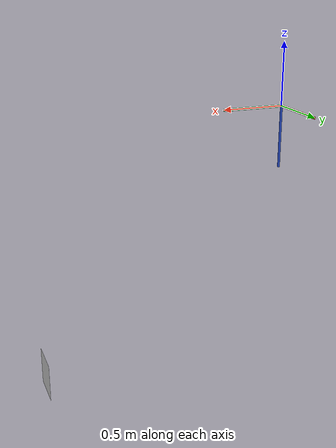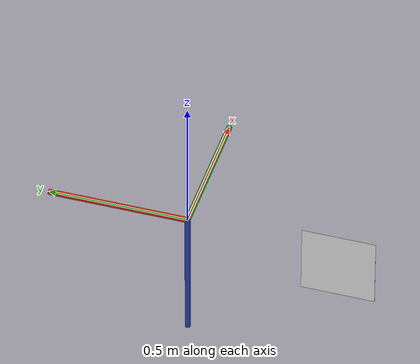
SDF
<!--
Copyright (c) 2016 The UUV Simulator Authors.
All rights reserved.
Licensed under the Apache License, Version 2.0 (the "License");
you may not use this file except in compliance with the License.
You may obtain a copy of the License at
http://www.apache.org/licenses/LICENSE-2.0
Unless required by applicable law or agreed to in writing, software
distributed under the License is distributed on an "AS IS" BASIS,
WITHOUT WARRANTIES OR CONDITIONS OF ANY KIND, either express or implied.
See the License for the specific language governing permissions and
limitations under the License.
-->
<sdf version="1.4">
 <world name="oceans_waves">
  <physics name="default_physics" default="true" type="ode">
   <max_step_size>0.002</max_step_size>
   <real_time_factor>1</real_time_factor>
   <real_time_update_rate>500</real_time_update_rate>
  </physics>
  <scene>
   <ambient>0.01 0.01 0.01 1.0</ambient>
   <sky><clouds><speed>12</speed></clouds></sky>
   <shadows>1</shadows>
  </scene>
  <spherical_coordinates>
   <latitude_deg>56.71897669633431</latitude_deg>
   <longitude_deg>3.515625</longitude_deg>
  </spherical_coordinates>
  <light type="directional" name="sun1">
   <pose>50 0 150 0 0 0</pose>
   <diffuse>1 1 1 1</diffuse>
   <specular>.1 .1 .1 1</specular>
   <direction>0.3 0.3 -1</direction>
   <cast_shadows>false</cast_shadows>
  </light>
  <light type="directional" name="sun_diffuse">
   <pose>-50 0 -150 0 0 0</pose>
   <diffuse>0.6 0.6 0.6 1</diffuse>
   <specular>0 0 0 1</specular>
   <direction>-0.3 -0.3 -1</direction>
   <cast_shadows>false</cast_shadows>
  </light>
  <include><uri>model://ned_frame</uri></include>
  <include><uri>model://aruco_visual_marker_7</uri><pose>2 0 -2 0 -1.57 0</pose></include>
  <plugin name="underwater_current_plugin" filename="libuuv_underwater_current_ros_plugin.so">
   <namespace>hydrodynamics</namespace>
   <constant_current>
    <topic>current_velocity</topic>
    <velocity><mean>0</mean><min>0</min><max>5</max><mu>0.0</mu><noiseAmp>0.0</noiseAmp></velocity>
    <horizontal_angle>
     <mean>0</mean>
     <min>-3.141592653589793238</min>
     <max>3.141592653589793238</max>
     <mu>0.0</mu>
     <noiseAmp>0.0</noiseAmp>
    </horizontal_angle>
    <vertical_angle>
     <mean>0</mean>
     <min>-3.141592653589793238</min>
     <max>3.141592653589793238</max>
     <mu>0.0</mu>
     <noiseAmp>0.0</noiseAmp>
    </vertical_angle>
   </constant_current>
  </plugin>
  <plugin name="sc_interface" filename="libuuv_sc_ros_interface_plugin.so"/>
 </world>
</sdf>

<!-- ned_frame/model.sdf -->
<sdf version='1.5'>
    <model name="world_ned">

      <pose>0 0 0 0 0 0</pose>
      <static>true</static>

      <link name="world_ned">
        <gravity>0</gravity>
        <pose>0 0 0 3.14159265359 0 1.5707963267948966</pose>

        <visual name="N_visual">
          <pose>0.25 0 0 1.5707963267948966 0 1.5707963267948966</pose>
          <geometry>
            <cylinder>
              <radius>0.01</radius>
              <length>0.5</length>
            </cylinder>
          </geometry>
          <material>
            <script>
              <uri>file://media/materials/scripts/gazebo.material</uri>
              <name>Gazebo/Red</name>
            </script>
          </material>
        </visual>

        <visual name="E_visual">
          <pose>0 0.25 0 1.5707963267948966 0 0</pose>
          <geometry>
            <cylinder>
              <radius>0.01</radius>
              <length>0.5</length>
            </cylinder>
          </geometry>
          <material>
            <script>
              <uri>file://media/materials/scripts/gazebo.material</uri>
              <name>Gazebo/Green</name>
            </script>
          </material>
        </visual>

        <visual name="D_visual">
          <pose>0 0 0.25 0 0 0</pose>
          <geometry>
            <cylinder>
              <radius>0.01</radius>
              <length>0.5</length>
            </cylinder>
          </geometry>
          <material>
            <script>
              <uri>file://media/materials/scripts/gazebo.material</uri>
              <name>Gazebo/Blue</name>
            </script>
          </material>
        </visual>
      </link>
    </model>
</sdf>

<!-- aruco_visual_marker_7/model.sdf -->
<sdf version='1.5'>
  <model name='aruco_visual_marker_7'>

    <link name='marker'>
      <pose frame=''>0 0 0 0 0 0</pose>
      <visual name='visual'>
        <geometry>
          <box>
            <size>0.3 0.3 1e-3</size>
          </box>
        </geometry>
        <material>
          <script>
            <uri>model://aruco_visual_marker_7/materials/scripts</uri>
            <uri>model://aruco_visual_marker_7/materials/textures</uri>
            <name>ArucoVisualMarker7/Marker</name>
          </script>
          <ambient>1 1 1 1</ambient>
          <diffuse>1 1 1 1</diffuse>
          <specular>0 0 0 1</specular>
          <emissive>1 1 1 0</emissive>
          <shader type='vertex'>
            <normal_map>__default__</normal_map>
          </shader>
        </material>
        <pose frame=''>0 0 0 0 -0 0</pose>
        <cast_shadows>1</cast_shadows>
        <transparency>0</transparency>
      </visual>
      <collision name='collision'>
        <laser_retro>0</laser_retro>
        <max_contacts>10</max_contacts>
        <pose frame=''>0 0 0 0 -0 0</pose>
        <geometry>
          <box>
            <size>0.1778 0.1778 1e-05</size>
          </box>
        </geometry>
      </collision>
    </link>

    <link name='marker_pad'>
      <pose frame='marker'>0 0 -1e-5 0 -0 0</pose>
      <visual name='visual'>
        <geometry>
          <box>
            <size>0.1778 0.1778 1e-5</size>
          </box>
        </geometry>
        <material>
          <lighting>1</lighting>
          <script>
            <uri>file://media/materials/scripts/gazebo.material</uri>
            <name>Gazebo/White</name>
          </script>
          <ambient>0.3 0.3 0.3 1</ambient>
          <diffuse>0.7 0.7 0.7 1</diffuse>
          <specular>0.01 0.01 0.01 1</specular>
          <emissive>1 1 1 0</emissive>
          <shader type='vertex'>
            <normal_map>__default__</normal_map>
          </shader>
        </material>
        <cast_shadows>1</cast_shadows>
        <transparency>0</transparency>
      </visual>
      <collision name='collision'>
        <laser_retro>0</laser_retro>
        <max_contacts>10</max_contacts>
        <pose frame=''>0 0 0 0 -0 0</pose>
        <geometry>
          <box>
            <size>0.1778 0.1778 1e-5</size>
          </box>
        </geometry>
      </collision>
    </link>

    <joint name='marker_JOINT_marker_pad' type='revolute'>
      <parent>marker</parent>
      <child>marker_pad</child>
      <pose frame=''>0 0 0 0 -0 0</pose>
      <axis>
        <xyz>0 0 1</xyz>
        <limit>
          <upper>0</upper>
          <lower>0</lower>
        </limit>
      </axis>
    </joint>

    <static>1</static>
    <allow_auto_disable>1</allow_auto_disable>

  </model>
</sdf>
